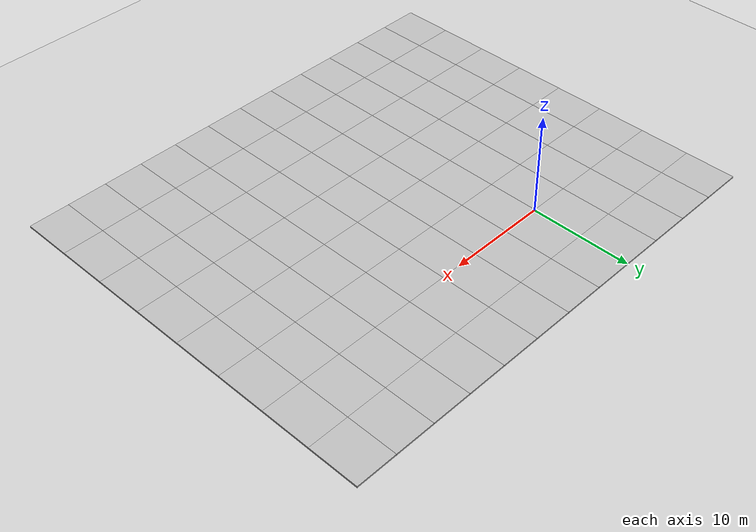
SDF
<sdf version="1.6">
 <world name="default">
  <light name="sun" type="directional">
   <pose>0 0 10 0 -0 0</pose>
   <diffuse>0.8 0.8 0.8 1</diffuse>
   <specular>0.2 0.2 0.2 1</specular>
   <attenuation>
    <range>1000</range>
    <constant>0.9</constant>
    <linear>0.01</linear>
    <quadratic>0.001</quadratic>
   </attenuation>
   <direction>-0.5 0.1 -0.9</direction>
  </light>
  <model name="ground_plane">
   <static>1</static>
   <link name="link">
    <collision name="collision">
     <geometry><plane><normal>0 0 1</normal><size>100 100</size></plane></geometry>
     <surface><friction><ode><mu>100</mu><mu2>50</mu2></ode></friction></surface>
    </collision>
    <visual name="visual">
     <cast_shadows>0</cast_shadows>
     <geometry><plane><normal>0 0 1</normal><size>100 100</size></plane></geometry>
     <material>
      <script><uri>file://media/materials/scripts/gazebo.material</uri><name>Gazebo/Grey</name></script>
     </material>
    </visual>
   </link>
  </model>
  <gravity>0 0 -9.8</gravity>
  <magnetic_field>6e-06 2.3e-05 -4.2e-05</magnetic_field>
  <atmosphere type="adiabatic"/>
  <physics name="default_physics" default="0" type="ode">
   <max_step_size>0.001</max_step_size>
   <real_time_factor>1</real_time_factor>
   <real_time_update_rate>1000</real_time_update_rate>
  </physics>
  <scene><ambient>0.4 0.4 0.4 1</ambient><background>0.7 0.7 0.7 1</background><shadows>1</shadows></scene>
  <spherical_coordinates>
   <surface_model>EARTH_WGS84</surface_model>
   <latitude_deg>0</latitude_deg>
   <longitude_deg>0</longitude_deg>
   <elevation>0</elevation>
   <heading_deg>0</heading_deg>
  </spherical_coordinates>
  <model name="mud_box">
   <static>1</static>
   <link name="link">
    <collision name="collision"><geometry><box><size>8 10 0.2</size></box></geometry></collision>
    <visual name="visual_1">
     <pose>-2 2.5 0 0 -0 0</pose>
     <cast_shadows>0</cast_shadows>
     <geometry><box><size>4 5 0.2</size></box></geometry>
     <material>
      <script>
       <uri>model://mud_box/materials/scripts</uri>
       <uri>model://mud_box/materials/textures</uri>
       <name>vrc/mud</name>
      </script>
     </material>
    </visual>
    <visual name="visual_2">
     <pose>2 2.5 0 0 -0 0</pose>
     <cast_shadows>0</cast_shadows>
     <geometry><box><size>4 5 0.2</size></box></geometry>
     <material>
      <script>
       <uri>model://mud_box/materials/scripts</uri>
       <uri>model://mud_box/materials/textures</uri>
       <name>vrc/mud</name>
      </script>
     </material>
    </visual>
    <visual name="visual_3">
     <pose>2 -2.5 0 0 -0 0</pose>
     <cast_shadows>0</cast_shadows>
     <geometry><box><size>4 5 0.2</size></box></geometry>
     <material>
      <script>
       <uri>model://mud_box/materials/scripts</uri>
       <uri>model://mud_box/materials/textures</uri>
       <name>vrc/mud</name>
      </script>
     </material>
    </visual>
    <visual name="visual_4">
     <pose>-2 -2.5 0 0 -0 0</pose>
     <cast_shadows>0</cast_shadows>
     <geometry><box><size>4 5 0.2</size></box></geometry>
     <material>
      <script>
       <uri>model://mud_box/materials/scripts</uri>
       <uri>model://mud_box/materials/textures</uri>
       <name>vrc/mud</name>
      </script>
     </material>
    </visual>
   </link>
   <pose>-4 5 0 0 -0 0</pose>
  </model>
  <model name="mud_box_clone">
   <static>1</static>
   <link name="link">
    <collision name="collision"><geometry><box><size>8 10 0.2</size></box></geometry></collision>
    <visual name="visual_1">
     <pose>-2 2.5 0 0 -0 0</pose>
     <cast_shadows>0</cast_shadows>
     <geometry><box><size>4 5 0.2</size></box></geometry>
     <material>
      <script>
       <uri>model://mud_box/materials/scripts</uri>
       <uri>model://mud_box/materials/textures</uri>
       <name>vrc/mud</name>
      </script>
     </material>
    </visual>
    <visual name="visual_2">
     <pose>2 2.5 0 0 -0 0</pose>
     <cast_shadows>0</cast_shadows>
     <geometry><box><size>4 5 0.2</size></box></geometry>
     <material>
      <script>
       <uri>model://mud_box/materials/scripts</uri>
       <uri>model://mud_box/materials/textures</uri>
       <name>vrc/mud</name>
      </script>
     </material>
    </visual>
    <visual name="visual_3">
     <pose>2 -2.5 0 0 -0 0</pose>
     <cast_shadows>0</cast_shadows>
     <geometry><box><size>4 5 0.2</size></box></geometry>
     <material>
      <script>
       <uri>model://mud_box/materials/scripts</uri>
       <uri>model://mud_box/materials/textures</uri>
       <name>vrc/mud</name>
      </script>
     </material>
    </visual>
    <visual name="visual_4">
     <pose>-2 -2.5 0 0 -0 0</pose>
     <cast_shadows>0</cast_shadows>
     <geometry><box><size>4 5 0.2</size></box></geometry>
     <material>
      <script>
       <uri>model://mud_box/materials/scripts</uri>
       <uri>model://mud_box/materials/textures</uri>
       <name>vrc/mud</name>
      </script>
     </material>
    </visual>
   </link>
   <pose>4 5 0 0 -0 0</pose>
  </model>
  <model name="mud_box_clone_0">
   <static>1</static>
   <link name="link">
    <collision name="collision"><geometry><box><size>8 10 0.2</size></box></geometry></collision>
    <visual name="visual_1">
     <pose>-2 2.5 0 0 -0 0</pose>
     <cast_shadows>0</cast_shadows>
     <geometry><box><size>4 5 0.2</size></box></geometry>
     <material>
      <script>
       <uri>model://mud_box/materials/scripts</uri>
       <uri>model://mud_box/materials/textures</uri>
       <name>vrc/mud</name>
      </script>
     </material>
    </visual>
    <visual name="visual_2">
     <pose>2 2.5 0 0 -0 0</pose>
     <cast_shadows>0</cast_shadows>
     <geometry><box><size>4 5 0.2</size></box></geometry>
     <material>
      <script>
       <uri>model://mud_box/materials/scripts</uri>
       <uri>model://mud_box/materials/textures</uri>
       <name>vrc/mud</name>
      </script>
     </material>
    </visual>
    <visual name="visual_3">
     <pose>2 -2.5 0 0 -0 0</pose>
     <cast_shadows>0</cast_shadows>
     <geometry><box><size>4 5 0.2</size></box></geometry>
     <material>
      <script>
       <uri>model://mud_box/materials/scripts</uri>
       <uri>model://mud_box/materials/textures</uri>
       <name>vrc/mud</name>
      </script>
     </material>
    </visual>
    <visual name="visual_4">
     <pose>-2 -2.5 0 0 -0 0</pose>
     <cast_shadows>0</cast_shadows>
     <geometry><box><size>4 5 0.2</size></box></geometry>
     <material>
      <script>
       <uri>model://mud_box/materials/scripts</uri>
       <uri>model://mud_box/materials/textures</uri>
       <name>vrc/mud</name>
      </script>
     </material>
    </visual>
   </link>
   <pose>12 5 0 0 -0 0</pose>
  </model>
  <model name="mud_box_clone_1">
   <static>1</static>
   <link name="link">
    <collision name="collision"><geometry><box><size>8 10 0.2</size></box></geometry></collision>
    <visual name="visual_1">
     <pose>-2 2.5 0 0 -0 0</pose>
     <cast_shadows>0</cast_shadows>
     <geometry><box><size>4 5 0.2</size></box></geometry>
     <material>
      <script>
       <uri>model://mud_box/materials/scripts</uri>
       <uri>model://mud_box/materials/textures</uri>
       <name>vrc/mud</name>
      </script>
     </material>
    </visual>
    <visual name="visual_2">
     <pose>2 2.5 0 0 -0 0</pose>
     <cast_shadows>0</cast_shadows>
     <geometry><box><size>4 5 0.2</size></box></geometry>
     <material>
      <script>
       <uri>model://mud_box/materials/scripts</uri>
       <uri>model://mud_box/materials/textures</uri>
       <name>vrc/mud</name>
      </script>
     </material>
    </visual>
    <visual name="visual_3">
     <pose>2 -2.5 0 0 -0 0</pose>
     <cast_shadows>0</cast_shadows>
     <geometry><box><size>4 5 0.2</size></box></geometry>
     <material>
      <script>
       <uri>model://mud_box/materials/scripts</uri>
       <uri>model://mud_box/materials/textures</uri>
       <name>vrc/mud</name>
      </script>
     </material>
    </visual>
    <visual name="visual_4">
     <pose>-2 -2.5 0 0 -0 0</pose>
     <cast_shadows>0</cast_shadows>
     <geometry><box><size>4 5 0.2</size></box></geometry>
     <material>
      <script>
       <uri>model://mud_box/materials/scripts</uri>
       <uri>model://mud_box/materials/textures</uri>
       <name>vrc/mud</name>
      </script>
     </material>
    </visual>
   </link>
   <pose>20 5 0 0 -0 0</pose>
  </model>
  <model name="mud_box_clone_2">
   <static>1</static>
   <link name="link">
    <collision name="collision"><geometry><box><size>8 10 0.2</size></box></geometry></collision>
    <visual name="visual_1">
     <pose>-2 2.5 0 0 -0 0</pose>
     <cast_shadows>0</cast_shadows>
     <geometry><box><size>4 5 0.2</size></box></geometry>
     <material>
      <script>
       <uri>model://mud_box/materials/scripts</uri>
       <uri>model://mud_box/materials/textures</uri>
       <name>vrc/mud</name>
      </script>
     </material>
    </visual>
    <visual name="visual_2">
     <pose>2 2.5 0 0 -0 0</pose>
     <cast_shadows>0</cast_shadows>
     <geometry><box><size>4 5 0.2</size></box></geometry>
     <material>
      <script>
       <uri>model://mud_box/materials/scripts</uri>
       <uri>model://mud_box/materials/textures</uri>
       <name>vrc/mud</name>
      </script>
     </material>
    </visual>
    <visual name="visual_3">
     <pose>2 -2.5 0 0 -0 0</pose>
     <cast_shadows>0</cast_shadows>
     <geometry><box><size>4 5 0.2</size></box></geometry>
     <material>
      <script>
       <uri>model://mud_box/materials/scripts</uri>
       <uri>model://mud_box/materials/textures</uri>
       <name>vrc/mud</name>
      </script>
     </material>
    </visual>
    <visual name="visual_4">
     <pose>-2 -2.5 0 0 -0 0</pose>
     <cast_shadows>0</cast_shadows>
     <geometry><box><size>4 5 0.2</size></box></geometry>
     <material>
      <script>
       <uri>model://mud_box/materials/scripts</uri>
       <uri>model://mud_box/materials/textures</uri>
       <name>vrc/mud</name>
      </script>
     </material>
    </visual>
   </link>
   <pose>-4 -5 0 0 -0 0</pose>
  </model>
  <model name="mud_box_clone_3">
   <static>1</static>
   <link name="link">
    <collision name="collision"><geometry><box><size>8 10 0.2</size></box></geometry></collision>
    <visual name="visual_1">
     <pose>-2 2.5 0 0 -0 0</pose>
     <cast_shadows>0</cast_shadows>
     <geometry><box><size>4 5 0.2</size></box></geometry>
     <material>
      <script>
       <uri>model://mud_box/materials/scripts</uri>
       <uri>model://mud_box/materials/textures</uri>
       <name>vrc/mud</name>
      </script>
     </material>
    </visual>
    <visual name="visual_2">
     <pose>2 2.5 0 0 -0 0</pose>
     <cast_shadows>0</cast_shadows>
     <geometry><box><size>4 5 0.2</size></box></geometry>
     <material>
      <script>
       <uri>model://mud_box/materials/scripts</uri>
       <uri>model://mud_box/materials/textures</uri>
       <name>vrc/mud</name>
      </script>
     </material>
    </visual>
    <visual name="visual_3">
     <pose>2 -2.5 0 0 -0 0</pose>
     <cast_shadows>0</cast_shadows>
     <geometry><box><size>4 5 0.2</size></box></geometry>
     <material>
      <script>
       <uri>model://mud_box/materials/scripts</uri>
       <uri>model://mud_box/materials/textures</uri>
       <name>vrc/mud</name>
      </script>
     </material>
    </visual>
    <visual name="visual_4">
     <pose>-2 -2.5 0 0 -0 0</pose>
     <cast_shadows>0</cast_shadows>
     <geometry><box><size>4 5 0.2</size></box></geometry>
     <material>
      <script>
       <uri>model://mud_box/materials/scripts</uri>
       <uri>model://mud_box/materials/textures</uri>
       <name>vrc/mud</name>
      </script>
     </material>
    </visual>
   </link>
   <pose>4 -5 0 0 -0 0</pose>
  </model>
  <model name="mud_box_clone_4">
   <static>1</static>
   <link name="link">
    <collision name="collision"><geometry><box><size>8 10 0.2</size></box></geometry></collision>
    <visual name="visual_1">
     <pose>-2 2.5 0 0 -0 0</pose>
     <cast_shadows>0</cast_shadows>
     <geometry><box><size>4 5 0.2</size></box></geometry>
     <material>
      <script>
       <uri>model://mud_box/materials/scripts</uri>
       <uri>model://mud_box/materials/textures</uri>
       <name>vrc/mud</name>
      </script>
     </material>
    </visual>
    <visual name="visual_2">
     <pose>2 2.5 0 0 -0 0</pose>
     <cast_shadows>0</cast_shadows>
     <geometry><box><size>4 5 0.2</size></box></geometry>
     <material>
      <script>
       <uri>model://mud_box/materials/scripts</uri>
       <uri>model://mud_box/materials/textures</uri>
       <name>vrc/mud</name>
      </script>
     </material>
    </visual>
    <visual name="visual_3">
     <pose>2 -2.5 0 0 -0 0</pose>
     <cast_shadows>0</cast_shadows>
     <geometry><box><size>4 5 0.2</size></box></geometry>
     <material>
      <script>
       <uri>model://mud_box/materials/scripts</uri>
       <uri>model://mud_box/materials/textures</uri>
       <name>vrc/mud</name>
      </script>
     </material>
    </visual>
    <visual name="visual_4">
     <pose>-2 -2.5 0 0 -0 0</pose>
     <cast_shadows>0</cast_shadows>
     <geometry><box><size>4 5 0.2</size></box></geometry>
     <material>
      <script>
       <uri>model://mud_box/materials/scripts</uri>
       <uri>model://mud_box/materials/textures</uri>
       <name>vrc/mud</name>
      </script>
     </material>
    </visual>
   </link>
   <pose>12 -5 0 0 -0 0</pose>
  </model>
  <model name="mud_box_clone_5">
   <static>1</static>
   <link name="link">
    <collision name="collision"><geometry><box><size>8 10 0.2</size></box></geometry></collision>
    <visual name="visual_1">
     <pose>-2 2.5 0 0 -0 0</pose>
     <cast_shadows>0</cast_shadows>
     <geometry><box><size>4 5 0.2</size></box></geometry>
     <material>
      <script>
       <uri>model://mud_box/materials/scripts</uri>
       <uri>model://mud_box/materials/textures</uri>
       <name>vrc/mud</name>
      </script>
     </material>
    </visual>
    <visual name="visual_2">
     <pose>2 2.5 0 0 -0 0</pose>
     <cast_shadows>0</cast_shadows>
     <geometry><box><size>4 5 0.2</size></box></geometry>
     <material>
      <script>
       <uri>model://mud_box/materials/scripts</uri>
       <uri>model://mud_box/materials/textures</uri>
       <name>vrc/mud</name>
      </script>
     </material>
    </visual>
    <visual name="visual_3">
     <pose>2 -2.5 0 0 -0 0</pose>
     <cast_shadows>0</cast_shadows>
     <geometry><box><size>4 5 0.2</size></box></geometry>
     <material>
      <script>
       <uri>model://mud_box/materials/scripts</uri>
       <uri>model://mud_box/materials/textures</uri>
       <name>vrc/mud</name>
      </script>
     </material>
    </visual>
    <visual name="visual_4">
     <pose>-2 -2.5 0 0 -0 0</pose>
     <cast_shadows>0</cast_shadows>
     <geometry><box><size>4 5 0.2</size></box></geometry>
     <material>
      <script>
       <uri>model://mud_box/materials/scripts</uri>
       <uri>model://mud_box/materials/textures</uri>
       <name>vrc/mud</name>
      </script>
     </material>
    </visual>
   </link>
   <pose>20 -5 0 0 -0 0</pose>
  </model>
  <model name="mud_box_clone_6">
   <static>1</static>
   <link name="link">
    <collision name="collision"><geometry><box><size>8 10 0.2</size></box></geometry></collision>
    <visual name="visual_1">
     <pose>-2 2.5 0 0 -0 0</pose>
     <cast_shadows>0</cast_shadows>
     <geometry><box><size>4 5 0.2</size></box></geometry>
     <material>
      <script>
       <uri>model://mud_box/materials/scripts</uri>
       <uri>model://mud_box/materials/textures</uri>
       <name>vrc/mud</name>
      </script>
     </material>
    </visual>
    <visual name="visual_2">
     <pose>2 2.5 0 0 -0 0</pose>
     <cast_shadows>0</cast_shadows>
     <geometry><box><size>4 5 0.2</size></box></geometry>
     <material>
      <script>
       <uri>model://mud_box/materials/scripts</uri>
       <uri>model://mud_box/materials/textures</uri>
       <name>vrc/mud</name>
      </script>
     </material>
    </visual>
    <visual name="visual_3">
     <pose>2 -2.5 0 0 -0 0</pose>
     <cast_shadows>0</cast_shadows>
     <geometry><box><size>4 5 0.2</size></box></geometry>
     <material>
      <script>
       <uri>model://mud_box/materials/scripts</uri>
       <uri>model://mud_box/materials/textures</uri>
       <name>vrc/mud</name>
      </script>
     </material>
    </visual>
    <visual name="visual_4">
     <pose>-2 -2.5 0 0 -0 0</pose>
     <cast_shadows>0</cast_shadows>
     <geometry><box><size>4 5 0.2</size></box></geometry>
     <material>
      <script>
       <uri>model://mud_box/materials/scripts</uri>
       <uri>model://mud_box/materials/textures</uri>
       <name>vrc/mud</name>
      </script>
     </material>
    </visual>
   </link>
   <pose>-4 -15 0 0 -0 0</pose>
  </model>
  <model name="mud_box_clone_7">
   <static>1</static>
   <link name="link">
    <collision name="collision"><geometry><box><size>8 10 0.2</size></box></geometry></collision>
    <visual name="visual_1">
     <pose>-2 2.5 0 0 -0 0</pose>
     <cast_shadows>0</cast_shadows>
     <geometry><box><size>4 5 0.2</size></box></geometry>
     <material>
      <script>
       <uri>model://mud_box/materials/scripts</uri>
       <uri>model://mud_box/materials/textures</uri>
       <name>vrc/mud</name>
      </script>
     </material>
    </visual>
    <visual name="visual_2">
     <pose>2 2.5 0 0 -0 0</pose>
     <cast_shadows>0</cast_shadows>
     <geometry><box><size>4 5 0.2</size></box></geometry>
     <material>
      <script>
       <uri>model://mud_box/materials/scripts</uri>
       <uri>model://mud_box/materials/textures</uri>
       <name>vrc/mud</name>
      </script>
     </material>
    </visual>
    <visual name="visual_3">
     <pose>2 -2.5 0 0 -0 0</pose>
     <cast_shadows>0</cast_shadows>
     <geometry><box><size>4 5 0.2</size></box></geometry>
     <material>
      <script>
       <uri>model://mud_box/materials/scripts</uri>
       <uri>model://mud_box/materials/textures</uri>
       <name>vrc/mud</name>
      </script>
     </material>
    </visual>
    <visual name="visual_4">
     <pose>-2 -2.5 0 0 -0 0</pose>
     <cast_shadows>0</cast_shadows>
     <geometry><box><size>4 5 0.2</size></box></geometry>
     <material>
      <script>
       <uri>model://mud_box/materials/scripts</uri>
       <uri>model://mud_box/materials/textures</uri>
       <name>vrc/mud</name>
      </script>
     </material>
    </visual>
   </link>
   <pose>4 -15 0 0 -0 0</pose>
  </model>
  <model name="mud_box_clone_8">
   <static>1</static>
   <link name="link">
    <collision name="collision"><geometry><box><size>8 10 0.2</size></box></geometry></collision>
    <visual name="visual_1">
     <pose>-2 2.5 0 0 -0 0</pose>
     <cast_shadows>0</cast_shadows>
     <geometry><box><size>4 5 0.2</size></box></geometry>
     <material>
      <script>
       <uri>model://mud_box/materials/scripts</uri>
       <uri>model://mud_box/materials/textures</uri>
       <name>vrc/mud</name>
      </script>
     </material>
    </visual>
    <visual name="visual_2">
     <pose>2 2.5 0 0 -0 0</pose>
     <cast_shadows>0</cast_shadows>
     <geometry><box><size>4 5 0.2</size></box></geometry>
     <material>
      <script>
       <uri>model://mud_box/materials/scripts</uri>
       <uri>model://mud_box/materials/textures</uri>
       <name>vrc/mud</name>
      </script>
     </material>
    </visual>
    <visual name="visual_3">
     <pose>2 -2.5 0 0 -0 0</pose>
     <cast_shadows>0</cast_shadows>
     <geometry><box><size>4 5 0.2</size></box></geometry>
     <material>
      <script>
       <uri>model://mud_box/materials/scripts</uri>
       <uri>model://mud_box/materials/textures</uri>
       <name>vrc/mud</name>
      </script>
     </material>
    </visual>
    <visual name="visual_4">
     <pose>-2 -2.5 0 0 -0 0</pose>
     <cast_shadows>0</cast_shadows>
     <geometry><box><size>4 5 0.2</size></box></geometry>
     <material>
      <script>
       <uri>model://mud_box/materials/scripts</uri>
       <uri>model://mud_box/materials/textures</uri>
       <name>vrc/mud</name>
      </script>
     </material>
    </visual>
   </link>
   <pose>12 -15 0 0 -0 0</pose>
  </model>
  <model name="mud_box_clone_9">
   <static>1</static>
   <link name="link">
    <collision name="collision"><geometry><box><size>8 10 0.2</size></box></geometry></collision>
    <visual name="visual_1">
     <pose>-2 2.5 0 0 -0 0</pose>
     <cast_shadows>0</cast_shadows>
     <geometry><box><size>4 5 0.2</size></box></geometry>
     <material>
      <script>
       <uri>model://mud_box/materials/scripts</uri>
       <uri>model://mud_box/materials/textures</uri>
       <name>vrc/mud</name>
      </script>
     </material>
    </visual>
    <visual name="visual_2">
     <pose>2 2.5 0 0 -0 0</pose>
     <cast_shadows>0</cast_shadows>
     <geometry><box><size>4 5 0.2</size></box></geometry>
     <material>
      <script>
       <uri>model://mud_box/materials/scripts</uri>
       <uri>model://mud_box/materials/textures</uri>
       <name>vrc/mud</name>
      </script>
     </material>
    </visual>
    <visual name="visual_3">
     <pose>2 -2.5 0 0 -0 0</pose>
     <cast_shadows>0</cast_shadows>
     <geometry><box><size>4 5 0.2</size></box></geometry>
     <material>
      <script>
       <uri>model://mud_box/materials/scripts</uri>
       <uri>model://mud_box/materials/textures</uri>
       <name>vrc/mud</name>
      </script>
     </material>
    </visual>
    <visual name="visual_4">
     <pose>-2 -2.5 0 0 -0 0</pose>
     <cast_shadows>0</cast_shadows>
     <geometry><box><size>4 5 0.2</size></box></geometry>
     <material>
      <script>
       <uri>model://mud_box/materials/scripts</uri>
       <uri>model://mud_box/materials/textures</uri>
       <name>vrc/mud</name>
      </script>
     </material>
    </visual>
   </link>
   <pose>20 -15 0 0 -0 0</pose>
  </model>
  <model name="mud_box_clone_10">
   <static>1</static>
   <link name="link">
    <collision name="collision"><geometry><box><size>8 10 0.2</size></box></geometry></collision>
    <visual name="visual_1">
     <pose>-2 2.5 0 0 -0 0</pose>
     <cast_shadows>0</cast_shadows>
     <geometry><box><size>4 5 0.2</size></box></geometry>
     <material>
      <script>
       <uri>model://mud_box/materials/scripts</uri>
       <uri>model://mud_box/materials/textures</uri>
       <name>vrc/mud</name>
      </script>
     </material>
    </visual>
    <visual name="visual_2">
     <pose>2 2.5 0 0 -0 0</pose>
     <cast_shadows>0</cast_shadows>
     <geometry><box><size>4 5 0.2</size></box></geometry>
     <material>
      <script>
       <uri>model://mud_box/materials/scripts</uri>
       <uri>model://mud_box/materials/textures</uri>
       <name>vrc/mud</name>
      </script>
     </material>
    </visual>
    <visual name="visual_3">
     <pose>2 -2.5 0 0 -0 0</pose>
     <cast_shadows>0</cast_shadows>
     <geometry><box><size>4 5 0.2</size></box></geometry>
     <material>
      <script>
       <uri>model://mud_box/materials/scripts</uri>
       <uri>model://mud_box/materials/textures</uri>
       <name>vrc/mud</name>
      </script>
     </material>
    </visual>
    <visual name="visual_4">
     <pose>-2 -2.5 0 0 -0 0</pose>
     <cast_shadows>0</cast_shadows>
     <geometry><box><size>4 5 0.2</size></box></geometry>
     <material>
      <script>
       <uri>model://mud_box/materials/scripts</uri>
       <uri>model://mud_box/materials/textures</uri>
       <name>vrc/mud</name>
      </script>
     </material>
    </visual>
   </link>
   <pose>-12 5 0 0 -0 0</pose>
  </model>
  <model name="mud_box_clone_11">
   <static>1</static>
   <link name="link">
    <collision name="collision"><geometry><box><size>8 10 0.2</size></box></geometry></collision>
    <visual name="visual_1">
     <pose>-2 2.5 0 0 -0 0</pose>
     <cast_shadows>0</cast_shadows>
     <geometry><box><size>4 5 0.2</size></box></geometry>
     <material>
      <script>
       <uri>model://mud_box/materials/scripts</uri>
       <uri>model://mud_box/materials/textures</uri>
       <name>vrc/mud</name>
      </script>
     </material>
    </visual>
    <visual name="visual_2">
     <pose>2 2.5 0 0 -0 0</pose>
     <cast_shadows>0</cast_shadows>
     <geometry><box><size>4 5 0.2</size></box></geometry>
     <material>
      <script>
       <uri>model://mud_box/materials/scripts</uri>
       <uri>model://mud_box/materials/textures</uri>
       <name>vrc/mud</name>
      </script>
     </material>
    </visual>
    <visual name="visual_3">
     <pose>2 -2.5 0 0 -0 0</pose>
     <cast_shadows>0</cast_shadows>
     <geometry><box><size>4 5 0.2</size></box></geometry>
     <material>
      <script>
       <uri>model://mud_box/materials/scripts</uri>
       <uri>model://mud_box/materials/textures</uri>
       <name>vrc/mud</name>
      </script>
     </material>
    </visual>
    <visual name="visual_4">
     <pose>-2 -2.5 0 0 -0 0</pose>
     <cast_shadows>0</cast_shadows>
     <geometry><box><size>4 5 0.2</size></box></geometry>
     <material>
      <script>
       <uri>model://mud_box/materials/scripts</uri>
       <uri>model://mud_box/materials/textures</uri>
       <name>vrc/mud</name>
      </script>
     </material>
    </visual>
   </link>
   <pose>-12 -5 0 0 -0 0</pose>
  </model>
  <model name="mud_box_clone_12">
   <static>1</static>
   <link name="link">
    <collision name="collision"><geometry><box><size>8 10 0.2</size></box></geometry></collision>
    <visual name="visual_1">
     <pose>-2 2.5 0 0 -0 0</pose>
     <cast_shadows>0</cast_shadows>
     <geometry><box><size>4 5 0.2</size></box></geometry>
     <material>
      <script>
       <uri>model://mud_box/materials/scripts</uri>
       <uri>model://mud_box/materials/textures</uri>
       <name>vrc/mud</name>
      </script>
     </material>
    </visual>
    <visual name="visual_2">
     <pose>2 2.5 0 0 -0 0</pose>
     <cast_shadows>0</cast_shadows>
     <geometry><box><size>4 5 0.2</size></box></geometry>
     <material>
      <script>
       <uri>model://mud_box/materials/scripts</uri>
       <uri>model://mud_box/materials/textures</uri>
       <name>vrc/mud</name>
      </script>
     </material>
    </visual>
    <visual name="visual_3">
     <pose>2 -2.5 0 0 -0 0</pose>
     <cast_shadows>0</cast_shadows>
     <geometry><box><size>4 5 0.2</size></box></geometry>
     <material>
      <script>
       <uri>model://mud_box/materials/scripts</uri>
       <uri>model://mud_box/materials/textures</uri>
       <name>vrc/mud</name>
      </script>
     </material>
    </visual>
    <visual name="visual_4">
     <pose>-2 -2.5 0 0 -0 0</pose>
     <cast_shadows>0</cast_shadows>
     <geometry><box><size>4 5 0.2</size></box></geometry>
     <material>
      <script>
       <uri>model://mud_box/materials/scripts</uri>
       <uri>model://mud_box/materials/textures</uri>
       <name>vrc/mud</name>
      </script>
     </material>
    </visual>
   </link>
   <pose>-12 -15 0 0 -0 0</pose>
  </model>
  <model name="mud_box_clone_13">
   <static>1</static>
   <link name="link">
    <collision name="collision"><geometry><box><size>8 10 0.2</size></box></geometry></collision>
    <visual name="visual_1">
     <pose>-2 2.5 0 0 -0 0</pose>
     <cast_shadows>0</cast_shadows>
     <geometry><box><size>4 5 0.2</size></box></geometry>
     <material>
      <script>
       <uri>model://mud_box/materials/scripts</uri>
       <uri>model://mud_box/materials/textures</uri>
       <name>vrc/mud</name>
      </script>
     </material>
    </visual>
    <visual name="visual_2">
     <pose>2 2.5 0 0 -0 0</pose>
     <cast_shadows>0</cast_shadows>
     <geometry><box><size>4 5 0.2</size></box></geometry>
     <material>
      <script>
       <uri>model://mud_box/materials/scripts</uri>
       <uri>model://mud_box/materials/textures</uri>
       <name>vrc/mud</name>
      </script>
     </material>
    </visual>
    <visual name="visual_3">
     <pose>2 -2.5 0 0 -0 0</pose>
     <cast_shadows>0</cast_shadows>
     <geometry><box><size>4 5 0.2</size></box></geometry>
     <material>
      <script>
       <uri>model://mud_box/materials/scripts</uri>
       <uri>model://mud_box/materials/textures</uri>
       <name>vrc/mud</name>
      </script>
     </material>
    </visual>
    <visual name="visual_4">
     <pose>-2 -2.5 0 0 -0 0</pose>
     <cast_shadows>0</cast_shadows>
     <geometry><box><size>4 5 0.2</size></box></geometry>
     <material>
      <script>
       <uri>model://mud_box/materials/scripts</uri>
       <uri>model://mud_box/materials/textures</uri>
       <name>vrc/mud</name>
      </script>
     </material>
    </visual>
   </link>
   <pose>28 5 0 0 -0 0</pose>
  </model>
  <model name="mud_box_clone_14">
   <static>1</static>
   <link name="link">
    <collision name="collision"><geometry><box><size>8 10 0.2</size></box></geometry></collision>
    <visual name="visual_1">
     <pose>-2 2.5 0 0 -0 0</pose>
     <cast_shadows>0</cast_shadows>
     <geometry><box><size>4 5 0.2</size></box></geometry>
     <material>
      <script>
       <uri>model://mud_box/materials/scripts</uri>
       <uri>model://mud_box/materials/textures</uri>
       <name>vrc/mud</name>
      </script>
     </material>
    </visual>
    <visual name="visual_2">
     <pose>2 2.5 0 0 -0 0</pose>
     <cast_shadows>0</cast_shadows>
     <geometry><box><size>4 5 0.2</size></box></geometry>
     <material>
      <script>
       <uri>model://mud_box/materials/scripts</uri>
       <uri>model://mud_box/materials/textures</uri>
       <name>vrc/mud</name>
      </script>
     </material>
    </visual>
    <visual name="visual_3">
     <pose>2 -2.5 0 0 -0 0</pose>
     <cast_shadows>0</cast_shadows>
     <geometry><box><size>4 5 0.2</size></box></geometry>
     <material>
      <script>
       <uri>model://mud_box/materials/scripts</uri>
       <uri>model://mud_box/materials/textures</uri>
       <name>vrc/mud</name>
      </script>
     </material>
    </visual>
    <visual name="visual_4">
     <pose>-2 -2.5 0 0 -0 0</pose>
     <cast_shadows>0</cast_shadows>
     <geometry><box><size>4 5 0.2</size></box></geometry>
     <material>
      <script>
       <uri>model://mud_box/materials/scripts</uri>
       <uri>model://mud_box/materials/textures</uri>
       <name>vrc/mud</name>
      </script>
     </material>
    </visual>
   </link>
   <pose>28 -5 0 0 -0 0</pose>
  </model>
  <model name="mud_box_clone_15">
   <static>1</static>
   <link name="link">
    <collision name="collision"><geometry><box><size>8 10 0.2</size></box></geometry></collision>
    <visual name="visual_1">
     <pose>-2 2.5 0 0 -0 0</pose>
     <cast_shadows>0</cast_shadows>
     <geometry><box><size>4 5 0.2</size></box></geometry>
     <material>
      <script>
       <uri>model://mud_box/materials/scripts</uri>
       <uri>model://mud_box/materials/textures</uri>
       <name>vrc/mud</name>
      </script>
     </material>
    </visual>
    <visual name="visual_2">
     <pose>2 2.5 0 0 -0 0</pose>
     <cast_shadows>0</cast_shadows>
     <geometry><box><size>4 5 0.2</size></box></geometry>
     <material>
      <script>
       <uri>model://mud_box/materials/scripts</uri>
       <uri>model://mud_box/materials/textures</uri>
       <name>vrc/mud</name>
      </script>
     </material>
    </visual>
    <visual name="visual_3">
     <pose>2 -2.5 0 0 -0 0</pose>
     <cast_shadows>0</cast_shadows>
     <geometry><box><size>4 5 0.2</size></box></geometry>
     <material>
      <script>
       <uri>model://mud_box/materials/scripts</uri>
       <uri>model://mud_box/materials/textures</uri>
       <name>vrc/mud</name>
      </script>
     </material>
    </visual>
    <visual name="visual_4">
     <pose>-2 -2.5 0 0 -0 0</pose>
     <cast_shadows>0</cast_shadows>
     <geometry><box><size>4 5 0.2</size></box></geometry>
     <material>
      <script>
       <uri>model://mud_box/materials/scripts</uri>
       <uri>model://mud_box/materials/textures</uri>
       <name>vrc/mud</name>
      </script>
     </material>
    </visual>
   </link>
   <pose>28 -15 0 0 -0 0</pose>
  </model>
  <model name="mud_box_clone_16">
   <static>1</static>
   <link name="link">
    <collision name="collision"><geometry><box><size>8 10 0.2</size></box></geometry></collision>
    <visual name="visual_1">
     <pose>-2 2.5 0 0 -0 0</pose>
     <cast_shadows>0</cast_shadows>
     <geometry><box><size>4 5 0.2</size></box></geometry>
     <material>
      <script>
       <uri>model://mud_box/materials/scripts</uri>
       <uri>model://mud_box/materials/textures</uri>
       <name>vrc/mud</name>
      </script>
     </material>
    </visual>
    <visual name="visual_2">
     <pose>2 2.5 0 0 -0 0</pose>
     <cast_shadows>0</cast_shadows>
     <geometry><box><size>4 5 0.2</size></box></geometry>
     <material>
      <script>
       <uri>model://mud_box/materials/scripts</uri>
       <uri>model://mud_box/materials/textures</uri>
       <name>vrc/mud</name>
      </script>
     </material>
    </visual>
    <visual name="visual_3">
     <pose>2 -2.5 0 0 -0 0</pose>
     <cast_shadows>0</cast_shadows>
     <geometry><box><size>4 5 0.2</size></box></geometry>
     <material>
      <script>
       <uri>model://mud_box/materials/scripts</uri>
       <uri>model://mud_box/materials/textures</uri>
       <name>vrc/mud</name>
      </script>
     </material>
    </visual>
    <visual name="visual_4">
     <pose>-2 -2.5 0 0 -0 0</pose>
     <cast_shadows>0</cast_shadows>
     <geometry><box><size>4 5 0.2</size></box></geometry>
     <material>
      <script>
       <uri>model://mud_box/materials/scripts</uri>
       <uri>model://mud_box/materials/textures</uri>
       <name>vrc/mud</name>
      </script>
     </material>
    </visual>
   </link>
   <pose>-12 -25 0 0 -0 0</pose>
  </model>
  <model name="mud_box_clone_17">
   <static>1</static>
   <link name="link">
    <collision name="collision"><geometry><box><size>8 10 0.2</size></box></geometry></collision>
    <visual name="visual_1">
     <pose>-2 2.5 0 0 -0 0</pose>
     <cast_shadows>0</cast_shadows>
     <geometry><box><size>4 5 0.2</size></box></geometry>
     <material>
      <script>
       <uri>model://mud_box/materials/scripts</uri>
       <uri>model://mud_box/materials/textures</uri>
       <name>vrc/mud</name>
      </script>
     </material>
    </visual>
    <visual name="visual_2">
     <pose>2 2.5 0 0 -0 0</pose>
     <cast_shadows>0</cast_shadows>
     <geometry><box><size>4 5 0.2</size></box></geometry>
     <material>
      <script>
       <uri>model://mud_box/materials/scripts</uri>
       <uri>model://mud_box/materials/textures</uri>
       <name>vrc/mud</name>
      </script>
     </material>
    </visual>
    <visual name="visual_3">
     <pose>2 -2.5 0 0 -0 0</pose>
     <cast_shadows>0</cast_shadows>
     <geometry><box><size>4 5 0.2</size></box></geometry>
     <material>
      <script>
       <uri>model://mud_box/materials/scripts</uri>
       <uri>model://mud_box/materials/textures</uri>
       <name>vrc/mud</name>
      </script>
     </material>
    </visual>
    <visual name="visual_4">
     <pose>-2 -2.5 0 0 -0 0</pose>
     <cast_shadows>0</cast_shadows>
     <geometry><box><size>4 5 0.2</size></box></geometry>
     <material>
      <script>
       <uri>model://mud_box/materials/scripts</uri>
       <uri>model://mud_box/materials/textures</uri>
       <name>vrc/mud</name>
      </script>
     </material>
    </visual>
   </link>
   <pose>-4 -25 0 0 -0 0</pose>
  </model>
  <model name="mud_box_clone_18">
   <static>1</static>
   <link name="link">
    <collision name="collision"><geometry><box><size>8 10 0.2</size></box></geometry></collision>
    <visual name="visual_1">
     <pose>-2 2.5 0 0 -0 0</pose>
     <cast_shadows>0</cast_shadows>
     <geometry><box><size>4 5 0.2</size></box></geometry>
     <material>
      <script>
       <uri>model://mud_box/materials/scripts</uri>
       <uri>model://mud_box/materials/textures</uri>
       <name>vrc/mud</name>
      </script>
     </material>
    </visual>
    <visual name="visual_2">
     <pose>2 2.5 0 0 -0 0</pose>
     <cast_shadows>0</cast_shadows>
     <geometry><box><size>4 5 0.2</size></box></geometry>
     <material>
      <script>
       <uri>model://mud_box/materials/scripts</uri>
       <uri>model://mud_box/materials/textures</uri>
       <name>vrc/mud</name>
      </script>
     </material>
    </visual>
    <visual name="visual_3">
     <pose>2 -2.5 0 0 -0 0</pose>
     <cast_shadows>0</cast_shadows>
     <geometry><box><size>4 5 0.2</size></box></geometry>
     <material>
      <script>
       <uri>model://mud_box/materials/scripts</uri>
       <uri>model://mud_box/materials/textures</uri>
       <name>vrc/mud</name>
      </script>
     </material>
    </visual>
    <visual name="visual_4">
     <pose>-2 -2.5 0 0 -0 0</pose>
     <cast_shadows>0</cast_shadows>
     <geometry><box><size>4 5 0.2</size></box></geometry>
     <material>
      <script>
       <uri>model://mud_box/materials/scripts</uri>
       <uri>model://mud_box/materials/textures</uri>
       <name>vrc/mud</name>
      </script>
     </material>
    </visual>
   </link>
   <pose>4 -25 0 0 -0 0</pose>
  </model>
  <model name="mud_box_clone_19">
   <static>1</static>
   <link name="link">
    <collision name="collision"><geometry><box><size>8 10 0.2</size></box></geometry></collision>
    <visual name="visual_1">
     <pose>-2 2.5 0 0 -0 0</pose>
     <cast_shadows>0</cast_shadows>
     <geometry><box><size>4 5 0.2</size></box></geometry>
     <material>
      <script>
       <uri>model://mud_box/materials/scripts</uri>
       <uri>model://mud_box/materials/textures</uri>
       <name>vrc/mud</name>
      </script>
     </material>
    </visual>
    <visual name="visual_2">
     <pose>2 2.5 0 0 -0 0</pose>
     <cast_shadows>0</cast_shadows>
     <geometry><box><size>4 5 0.2</size></box></geometry>
     <material>
      <script>
       <uri>model://mud_box/materials/scripts</uri>
       <uri>model://mud_box/materials/textures</uri>
       <name>vrc/mud</name>
      </script>
     </material>
    </visual>
    <visual name="visual_3">
     <pose>2 -2.5 0 0 -0 0</pose>
     <cast_shadows>0</cast_shadows>
     <geometry><box><size>4 5 0.2</size></box></geometry>
     <material>
      <script>
       <uri>model://mud_box/materials/scripts</uri>
       <uri>model://mud_box/materials/textures</uri>
       <name>vrc/mud</name>
      </script>
     </material>
    </visual>
    <visual name="visual_4">
     <pose>-2 -2.5 0 0 -0 0</pose>
     <cast_shadows>0</cast_shadows>
     <geometry><box><size>4 5 0.2</size></box></geometry>
     <material>
      <script>
       <uri>model://mud_box/materials/scripts</uri>
       <uri>model://mud_box/materials/textures</uri>
       <name>vrc/mud</name>
      </script>
     </material>
    </visual>
   </link>
   <pose>12 -25 0 0 -0 0</pose>
  </model>
  <model name="mud_box_clone_20">
   <static>1</static>
   <link name="link">
    <collision name="collision"><geometry><box><size>8 10 0.2</size></box></geometry></collision>
    <visual name="visual_1">
     <pose>-2 2.5 0 0 -0 0</pose>
     <cast_shadows>0</cast_shadows>
     <geometry><box><size>4 5 0.2</size></box></geometry>
     <material>
      <script>
       <uri>model://mud_box/materials/scripts</uri>
       <uri>model://mud_box/materials/textures</uri>
       <name>vrc/mud</name>
      </script>
     </material>
    </visual>
    <visual name="visual_2">
     <pose>2 2.5 0 0 -0 0</pose>
     <cast_shadows>0</cast_shadows>
     <geometry><box><size>4 5 0.2</size></box></geometry>
     <material>
      <script>
       <uri>model://mud_box/materials/scripts</uri>
       <uri>model://mud_box/materials/textures</uri>
       <name>vrc/mud</name>
      </script>
     </material>
    </visual>
    <visual name="visual_3">
     <pose>2 -2.5 0 0 -0 0</pose>
     <cast_shadows>0</cast_shadows>
     <geometry><box><size>4 5 0.2</size></box></geometry>
     <material>
      <script>
       <uri>model://mud_box/materials/scripts</uri>
       <uri>model://mud_box/materials/textures</uri>
       <name>vrc/mud</name>
      </script>
     </material>
    </visual>
    <visual name="visual_4">
     <pose>-2 -2.5 0 0 -0 0</pose>
     <cast_shadows>0</cast_shadows>
     <geometry><box><size>4 5 0.2</size></box></geometry>
     <material>
      <script>
       <uri>model://mud_box/materials/scripts</uri>
       <uri>model://mud_box/materials/textures</uri>
       <name>vrc/mud</name>
      </script>
     </material>
    </visual>
   </link>
   <pose>20 -25 0 0 -0 0</pose>
  </model>
  <model name="mud_box_clone_21">
   <static>1</static>
   <link name="link">
    <collision name="collision"><geometry><box><size>8 10 0.2</size></box></geometry></collision>
    <visual name="visual_1">
     <pose>-2 2.5 0 0 -0 0</pose>
     <cast_shadows>0</cast_shadows>
     <geometry><box><size>4 5 0.2</size></box></geometry>
     <material>
      <script>
       <uri>model://mud_box/materials/scripts</uri>
       <uri>model://mud_box/materials/textures</uri>
       <name>vrc/mud</name>
      </script>
     </material>
    </visual>
    <visual name="visual_2">
     <pose>2 2.5 0 0 -0 0</pose>
     <cast_shadows>0</cast_shadows>
     <geometry><box><size>4 5 0.2</size></box></geometry>
     <material>
      <script>
       <uri>model://mud_box/materials/scripts</uri>
       <uri>model://mud_box/materials/textures</uri>
       <name>vrc/mud</name>
      </script>
     </material>
    </visual>
    <visual name="visual_3">
     <pose>2 -2.5 0 0 -0 0</pose>
     <cast_shadows>0</cast_shadows>
     <geometry><box><size>4 5 0.2</size></box></geometry>
     <material>
      <script>
       <uri>model://mud_box/materials/scripts</uri>
       <uri>model://mud_box/materials/textures</uri>
       <name>vrc/mud</name>
      </script>
     </material>
    </visual>
    <visual name="visual_4">
     <pose>-2 -2.5 0 0 -0 0</pose>
     <cast_shadows>0</cast_shadows>
     <geometry><box><size>4 5 0.2</size></box></geometry>
     <material>
      <script>
       <uri>model://mud_box/materials/scripts</uri>
       <uri>model://mud_box/materials/textures</uri>
       <name>vrc/mud</name>
      </script>
     </material>
    </visual>
   </link>
   <pose>28 -25 0 0 -0 0</pose>
  </model>
 </world>
</sdf>
